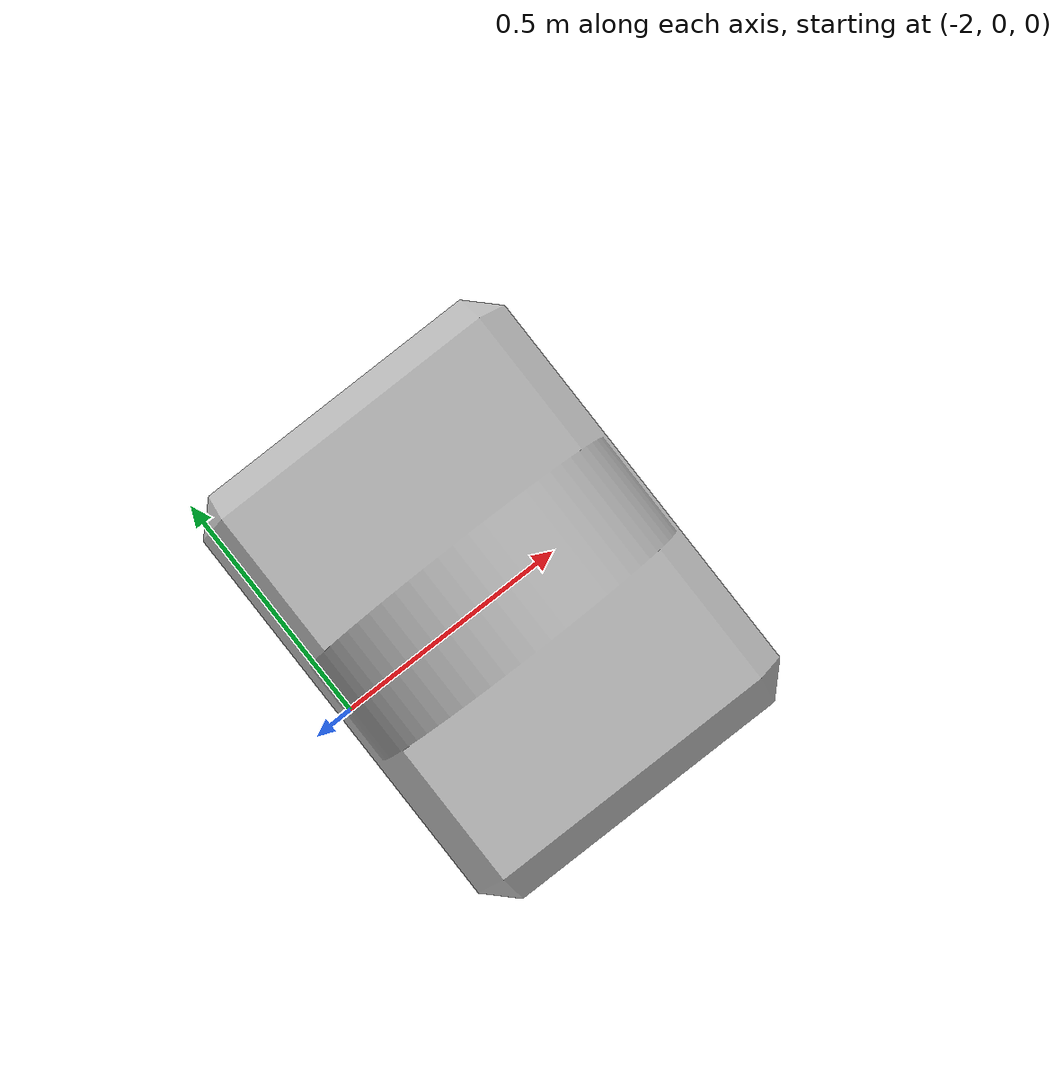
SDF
<sdf version="1.6">
  <model name="fragments_2lb">
    <link name="link">
    <visual name='visual'>
      <geometry>
        <mesh>
          <uri>model://fragments_2lb/meshes/fragments_2lb.stl</uri>
	  <scale>0.01 0.01 0.01</scale>
        </mesh>
      </geometry>
    </visual>

    <collision name='collision'>
      <geometry>
        <mesh>
          <uri>model://fragments_2lb/meshes/fragments_2lb.stl</uri>
	        <scale>0.01 0.01 0.01</scale>
        </mesh>
      </geometry>
    </collision>

    </link>
  </model>
</sdf>
